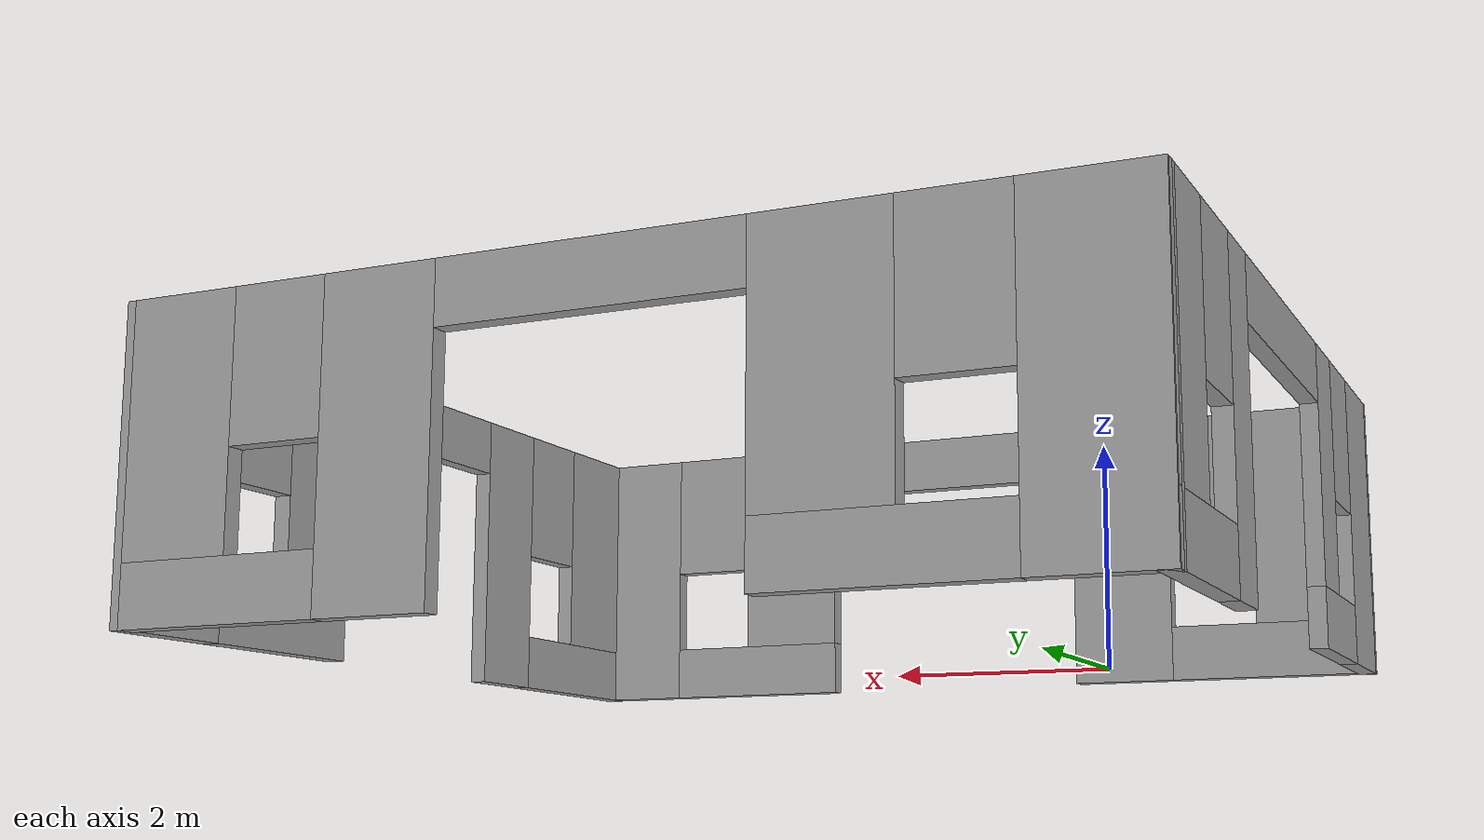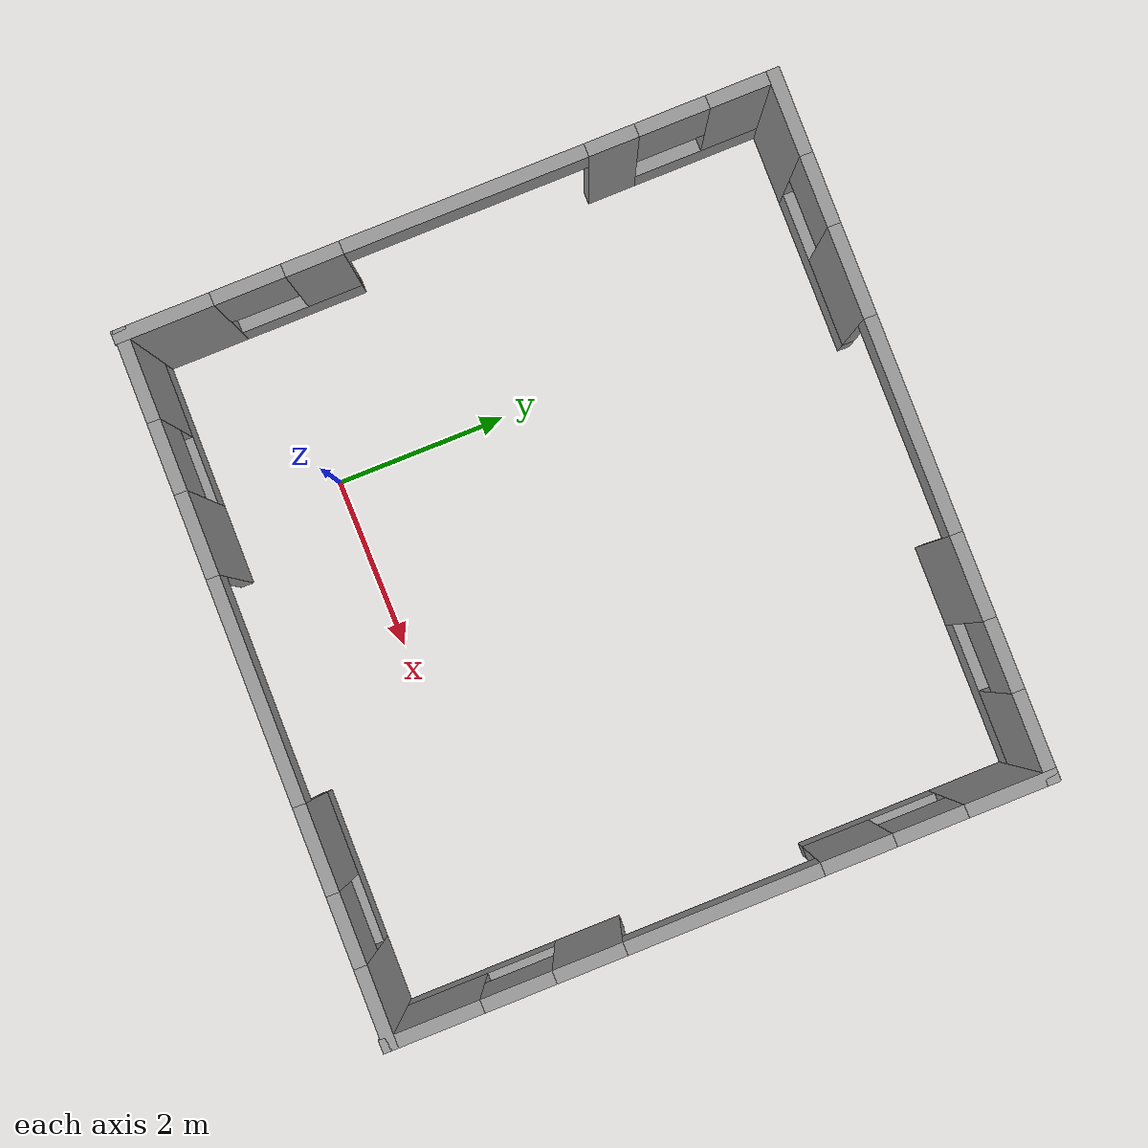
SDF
<?xml version='1.0'?>
<sdf version='1.6'>
  <model name='center'>
    <pose frame=''>1.915 2.23165 0 0 -0 0</pose>
    <link name='Wall_0'>
      <pose frame=''>-3.925 0.043311 0 0 -0 1.5708</pose>
      <visual name='Wall_0_Visual_0'>
        <pose frame=''>-3.19646 0 1.25 0 -0 0</pose>
        <geometry>
          <box>
            <size>1.10708 0.15 2.5</size>
          </box>
        </geometry>
        <material>
          <script>
            <uri>file://media/materials/scripts/gazebo.material</uri>
            <name>Gazebo/Grey</name>
          </script>
          <ambient>1 1 1 1</ambient>
        </material>
        <meta>
          <layer>0</layer>
        </meta>
      </visual>
      <collision name='Wall_0_Collision_0'>
        <geometry>
          <box>
            <size>1.10708 0.15 2.5</size>
          </box>
        </geometry>
        <pose frame=''>-3.19646 0 1.25 0 -0 0</pose>
      </collision>
      <visual name='Wall_0_Visual_1'>
        <pose frame=''>1.84852 0 1.25 0 -0 0</pose>
        <geometry>
          <box>
            <size>0.566695 0.15 2.5</size>
          </box>
        </geometry>
        <material>
          <script>
            <uri>file://media/materials/scripts/gazebo.material</uri>
            <name>Gazebo/Grey</name>
          </script>
          <ambient>1 1 1 1</ambient>
        </material>
        <meta>
          <layer>0</layer>
        </meta>
      </visual>
      <collision name='Wall_0_Collision_1'>
        <geometry>
          <box>
            <size>0.566695 0.15 2.5</size>
          </box>
        </geometry>
        <pose frame=''>1.84852 0 1.25 0 -0 0</pose>
      </collision>
      <visual name='Wall_0_Visual_2'>
        <pose frame=''>-1.91585 0 0.25 0 -0 0</pose>
        <geometry>
          <box>
            <size>1.45415 0.15 0.5</size>
          </box>
        </geometry>
        <material>
          <script>
            <uri>file://media/materials/scripts/gazebo.material</uri>
            <name>Gazebo/Grey</name>
          </script>
          <ambient>1 1 1 1</ambient>
        </material>
        <meta>
          <layer>0</layer>
        </meta>
      </visual>
      <collision name='Wall_0_Collision_2'>
        <geometry>
          <box>
            <size>1.45415 0.15 0.5</size>
          </box>
        </geometry>
        <pose frame=''>-1.91585 0 0.25 0 -0 0</pose>
      </collision>
      <visual name='Wall_0_Visual_3'>
        <pose frame=''>2.94093 0 0.25 0 -0 0</pose>
        <geometry>
          <box>
            <size>1.61813 0.15 0.5</size>
          </box>
        </geometry>
        <material>
          <script>
            <uri>file://media/materials/scripts/gazebo.material</uri>
            <name>Gazebo/Grey</name>
          </script>
          <ambient>1 1 1 1</ambient>
        </material>
        <meta>
          <layer>0</layer>
        </meta>
      </visual>
      <collision name='Wall_0_Collision_3'>
        <geometry>
          <box>
            <size>1.61813 0.15 0.5</size>
          </box>
        </geometry>
        <pose frame=''>2.94093 0 0.25 0 -0 0</pose>
      </collision>
      <visual name='Wall_0_Visual_4'>
        <pose frame=''>-1.51585 0 1.5 0 -0 0</pose>
        <geometry>
          <box>
            <size>0.654145 0.15 2</size>
          </box>
        </geometry>
        <material>
          <script>
            <uri>file://media/materials/scripts/gazebo.material</uri>
            <name>Gazebo/Grey</name>
          </script>
          <ambient>1 1 1 1</ambient>
        </material>
        <meta>
          <layer>0</layer>
        </meta>
      </visual>
      <collision name='Wall_0_Collision_4'>
        <geometry>
          <box>
            <size>0.654145 0.15 2</size>
          </box>
        </geometry>
        <pose frame=''>-1.51585 0 1.5 0 -0 0</pose>
      </collision>
      <visual name='Wall_0_Visual_5'>
        <pose frame=''>-1.51585 0 1.5 0 -0 0</pose>
        <geometry>
          <box>
            <size>0.654145 0.15 2</size>
          </box>
        </geometry>
        <material>
          <script>
            <uri>file://media/materials/scripts/gazebo.material</uri>
            <name>Gazebo/Grey</name>
          </script>
          <ambient>1 1 1 1</ambient>
        </material>
        <meta>
          <layer>0</layer>
        </meta>
      </visual>
      <collision name='Wall_0_Collision_5'>
        <geometry>
          <box>
            <size>0.654145 0.15 2</size>
          </box>
        </geometry>
        <pose frame=''>-1.51585 0 1.5 0 -0 0</pose>
      </collision>
      <visual name='Wall_0_Visual_6'>
        <pose frame=''>3.34093 0 1.5 0 -0 0</pose>
        <geometry>
          <box>
            <size>0.818134 0.15 2</size>
          </box>
        </geometry>
        <material>
          <script>
            <uri>file://media/materials/scripts/gazebo.material</uri>
            <name>Gazebo/Grey</name>
          </script>
          <ambient>1 1 1 1</ambient>
        </material>
        <meta>
          <layer>0</layer>
        </meta>
      </visual>
      <collision name='Wall_0_Collision_6'>
        <geometry>
          <box>
            <size>0.818134 0.15 2</size>
          </box>
        </geometry>
        <pose frame=''>3.34093 0 1.5 0 -0 0</pose>
      </collision>
      <visual name='Wall_0_Visual_7'>
        <pose frame=''>-2.24292 0 1.9 0 -0 0</pose>
        <geometry>
          <box>
            <size>0.8 0.15 1.2</size>
          </box>
        </geometry>
        <material>
          <script>
            <uri>file://media/materials/scripts/gazebo.material</uri>
            <name>Gazebo/Grey</name>
          </script>
          <ambient>1 1 1 1</ambient>
        </material>
        <meta>
          <layer>0</layer>
        </meta>
      </visual>
      <collision name='Wall_0_Collision_7'>
        <geometry>
          <box>
            <size>0.8 0.15 1.2</size>
          </box>
        </geometry>
        <pose frame=''>-2.24292 0 1.9 0 -0 0</pose>
      </collision>
      <visual name='Wall_0_Visual_8'>
        <pose frame=''>2.53187 0 1.9 0 -0 0</pose>
        <geometry>
          <box>
            <size>0.8 0.15 1.2</size>
          </box>
        </geometry>
        <material>
          <script>
            <uri>file://media/materials/scripts/gazebo.material</uri>
            <name>Gazebo/Grey</name>
          </script>
          <ambient>1 1 1 1</ambient>
        </material>
        <meta>
          <layer>0</layer>
        </meta>
      </visual>
      <collision name='Wall_0_Collision_8'>
        <geometry>
          <box>
            <size>0.8 0.15 1.2</size>
          </box>
        </geometry>
        <pose frame=''>2.53187 0 1.9 0 -0 0</pose>
      </collision>
      <visual name='Wall_0_Visual_9'>
        <pose frame=''>0.188198 0 2.25 0 -0 0</pose>
        <geometry>
          <box>
            <size>2.75395 0.15 0.5</size>
          </box>
        </geometry>
        <material>
          <script>
            <uri>file://media/materials/scripts/gazebo.material</uri>
            <name>Gazebo/Grey</name>
          </script>
          <ambient>1 1 1 1</ambient>
        </material>
        <meta>
          <layer>0</layer>
        </meta>
      </visual>
      <collision name='Wall_0_Collision_9'>
        <geometry>
          <box>
            <size>2.75395 0.15 0.5</size>
          </box>
        </geometry>
        <pose frame=''>0.188198 0 2.25 0 -0 0</pose>
      </collision>
      <visual name='Wall_0_Visual_10'>
        <pose frame=''>0.188198 0 2.25 0 -0 0</pose>
        <geometry>
          <box>
            <size>2.75395 0.15 0.5</size>
          </box>
        </geometry>
        <material>
          <script>
            <uri>file://media/materials/scripts/gazebo.material</uri>
            <name>Gazebo/Grey</name>
          </script>
          <ambient>1 1 1 1</ambient>
        </material>
        <meta>
          <layer>0</layer>
        </meta>
      </visual>
      <collision name='Wall_0_Collision_10'>
        <geometry>
          <box>
            <size>2.75395 0.15 0.5</size>
          </box>
        </geometry>
        <pose frame=''>0.188198 0 2.25 0 -0 0</pose>
      </collision>
    </link>
    <link name='Wall_1'>
      <pose frame=''>0 3.69208 0 0 -0 -0.01114</pose>
      <visual name='Wall_1_Visual_0'>
        <pose frame=''>-3.51677 0 1.25 0 -0 0</pose>
        <geometry>
          <box>
            <size>0.966478 0.15 2.5</size>
          </box>
        </geometry>
        <material>
          <script>
            <uri>file://media/materials/scripts/gazebo.material</uri>
            <name>Gazebo/Grey</name>
          </script>
          <ambient>1 1 1 1</ambient>
        </material>
        <meta>
          <layer>0</layer>
        </meta>
      </visual>
      <collision name='Wall_1_Collision_0'>
        <geometry>
          <box>
            <size>0.966478 0.15 2.5</size>
          </box>
        </geometry>
        <pose frame=''>-3.51677 0 1.25 0 -0 0</pose>
      </collision>
      <visual name='Wall_1_Visual_1'>
        <pose frame=''>1.70109 0 1.25 0 -0 0</pose>
        <geometry>
          <box>
            <size>0.951621 0.15 2.5</size>
          </box>
        </geometry>
        <material>
          <script>
            <uri>file://media/materials/scripts/gazebo.material</uri>
            <name>Gazebo/Grey</name>
          </script>
          <ambient>1 1 1 1</ambient>
        </material>
        <meta>
          <layer>0</layer>
        </meta>
      </visual>
      <collision name='Wall_1_Collision_1'>
        <geometry>
          <box>
            <size>0.951621 0.15 2.5</size>
          </box>
        </geometry>
        <pose frame=''>1.70109 0 1.25 0 -0 0</pose>
      </collision>
      <visual name='Wall_1_Visual_2'>
        <pose frame=''>-2.11739 0 0.25 0 -0 0</pose>
        <geometry>
          <box>
            <size>1.8323 0.15 0.5</size>
          </box>
        </geometry>
        <material>
          <script>
            <uri>file://media/materials/scripts/gazebo.material</uri>
            <name>Gazebo/Grey</name>
          </script>
          <ambient>1 1 1 1</ambient>
        </material>
        <meta>
          <layer>0</layer>
        </meta>
      </visual>
      <collision name='Wall_1_Collision_2'>
        <geometry>
          <box>
            <size>1.8323 0.15 0.5</size>
          </box>
        </geometry>
        <pose frame=''>-2.11739 0 0.25 0 -0 0</pose>
      </collision>
      <visual name='Wall_1_Visual_3'>
        <pose frame=''>3.08846 0 0.25 0 -0 0</pose>
        <geometry>
          <box>
            <size>1.8231 0.15 0.5</size>
          </box>
        </geometry>
        <material>
          <script>
            <uri>file://media/materials/scripts/gazebo.material</uri>
            <name>Gazebo/Grey</name>
          </script>
          <ambient>1 1 1 1</ambient>
        </material>
        <meta>
          <layer>0</layer>
        </meta>
      </visual>
      <collision name='Wall_1_Collision_3'>
        <geometry>
          <box>
            <size>1.8231 0.15 0.5</size>
          </box>
        </geometry>
        <pose frame=''>3.08846 0 0.25 0 -0 0</pose>
      </collision>
      <visual name='Wall_1_Visual_4'>
        <pose frame=''>-1.71738 0 1.5 0 -0 0</pose>
        <geometry>
          <box>
            <size>1.03229 0.15 2</size>
          </box>
        </geometry>
        <material>
          <script>
            <uri>file://media/materials/scripts/gazebo.material</uri>
            <name>Gazebo/Grey</name>
          </script>
          <ambient>1 1 1 1</ambient>
        </material>
        <meta>
          <layer>0</layer>
        </meta>
      </visual>
      <collision name='Wall_1_Collision_4'>
        <geometry>
          <box>
            <size>1.03229 0.15 2</size>
          </box>
        </geometry>
        <pose frame=''>-1.71738 0 1.5 0 -0 0</pose>
      </collision>
      <visual name='Wall_1_Visual_5'>
        <pose frame=''>-1.71738 0 1.5 0 -0 0</pose>
        <geometry>
          <box>
            <size>1.03229 0.15 2</size>
          </box>
        </geometry>
        <material>
          <script>
            <uri>file://media/materials/scripts/gazebo.material</uri>
            <name>Gazebo/Grey</name>
          </script>
          <ambient>1 1 1 1</ambient>
        </material>
        <meta>
          <layer>0</layer>
        </meta>
      </visual>
      <collision name='Wall_1_Collision_5'>
        <geometry>
          <box>
            <size>1.03229 0.15 2</size>
          </box>
        </geometry>
        <pose frame=''>-1.71738 0 1.5 0 -0 0</pose>
      </collision>
      <visual name='Wall_1_Visual_6'>
        <pose frame=''>3.48846 0 1.5 0 -0 0</pose>
        <geometry>
          <box>
            <size>1.0231 0.15 2</size>
          </box>
        </geometry>
        <material>
          <script>
            <uri>file://media/materials/scripts/gazebo.material</uri>
            <name>Gazebo/Grey</name>
          </script>
          <ambient>1 1 1 1</ambient>
        </material>
        <meta>
          <layer>0</layer>
        </meta>
      </visual>
      <collision name='Wall_1_Collision_6'>
        <geometry>
          <box>
            <size>1.0231 0.15 2</size>
          </box>
        </geometry>
        <pose frame=''>3.48846 0 1.5 0 -0 0</pose>
      </collision>
      <visual name='Wall_1_Visual_7'>
        <pose frame=''>-2.63353 0 1.9 0 -0 0</pose>
        <geometry>
          <box>
            <size>0.8 0.15 1.2</size>
          </box>
        </geometry>
        <material>
          <script>
            <uri>file://media/materials/scripts/gazebo.material</uri>
            <name>Gazebo/Grey</name>
          </script>
          <ambient>1 1 1 1</ambient>
        </material>
        <meta>
          <layer>0</layer>
        </meta>
      </visual>
      <collision name='Wall_1_Collision_7'>
        <geometry>
          <box>
            <size>0.8 0.15 1.2</size>
          </box>
        </geometry>
        <pose frame=''>-2.63353 0 1.9 0 -0 0</pose>
      </collision>
      <visual name='Wall_1_Visual_8'>
        <pose frame=''>2.5769 0 1.9 0 -0 0</pose>
        <geometry>
          <box>
            <size>0.8 0.15 1.2</size>
          </box>
        </geometry>
        <material>
          <script>
            <uri>file://media/materials/scripts/gazebo.material</uri>
            <name>Gazebo/Grey</name>
          </script>
          <ambient>1 1 1 1</ambient>
        </material>
        <meta>
          <layer>0</layer>
        </meta>
      </visual>
      <collision name='Wall_1_Collision_8'>
        <geometry>
          <box>
            <size>0.8 0.15 1.2</size>
          </box>
        </geometry>
        <pose frame=''>2.5769 0 1.9 0 -0 0</pose>
      </collision>
      <visual name='Wall_1_Visual_9'>
        <pose frame=''>0.012023 0 2.25 0 -0 0</pose>
        <geometry>
          <box>
            <size>2.42652 0.15 0.5</size>
          </box>
        </geometry>
        <material>
          <script>
            <uri>file://media/materials/scripts/gazebo.material</uri>
            <name>Gazebo/Grey</name>
          </script>
          <ambient>1 1 1 1</ambient>
        </material>
        <meta>
          <layer>0</layer>
        </meta>
      </visual>
      <collision name='Wall_1_Collision_9'>
        <geometry>
          <box>
            <size>2.42652 0.15 0.5</size>
          </box>
        </geometry>
        <pose frame=''>0.012023 0 2.25 0 -0 0</pose>
      </collision>
      <visual name='Wall_1_Visual_10'>
        <pose frame=''>0.012023 0 2.25 0 -0 0</pose>
        <geometry>
          <box>
            <size>2.42652 0.15 0.5</size>
          </box>
        </geometry>
        <material>
          <script>
            <uri>file://media/materials/scripts/gazebo.material</uri>
            <name>Gazebo/Grey</name>
          </script>
          <ambient>1 1 1 1</ambient>
        </material>
        <meta>
          <layer>0</layer>
        </meta>
      </visual>
      <collision name='Wall_1_Collision_10'>
        <geometry>
          <box>
            <size>2.42652 0.15 0.5</size>
          </box>
        </geometry>
        <pose frame=''>0.012023 0 2.25 0 -0 0</pose>
      </collision>
    </link>
    <link name='Wall_2'>
      <pose frame=''>3.925 -0.044139 0 0 -0 -1.5708</pose>
      <visual name='Wall_2_Visual_0'>
        <pose frame=''>-3.25348 0 1.25 0 -0 0</pose>
        <geometry>
          <box>
            <size>1.02801 0.15 2.5</size>
          </box>
        </geometry>
        <material>
          <script>
            <uri>file://media/materials/scripts/gazebo.material</uri>
            <name>Gazebo/Grey</name>
          </script>
          <ambient>1 1 1 1</ambient>
        </material>
        <meta>
          <layer>0</layer>
        </meta>
      </visual>
      <collision name='Wall_2_Collision_0'>
        <geometry>
          <box>
            <size>1.02801 0.15 2.5</size>
          </box>
        </geometry>
        <pose frame=''>-3.25348 0 1.25 0 -0 0</pose>
      </collision>
      <visual name='Wall_2_Visual_1'>
        <pose frame=''>1.45026 0 1.25 0 -0 0</pose>
        <geometry>
          <box>
            <size>0.785321 0.15 2.5</size>
          </box>
        </geometry>
        <material>
          <script>
            <uri>file://media/materials/scripts/gazebo.material</uri>
            <name>Gazebo/Grey</name>
          </script>
          <ambient>1 1 1 1</ambient>
        </material>
        <meta>
          <layer>0</layer>
        </meta>
      </visual>
      <collision name='Wall_2_Collision_1'>
        <geometry>
          <box>
            <size>0.785321 0.15 2.5</size>
          </box>
        </geometry>
        <pose frame=''>1.45026 0 1.25 0 -0 0</pose>
      </collision>
      <visual name='Wall_2_Visual_2'>
        <pose frame=''>-1.93807 0 0.25 0 -0 0</pose>
        <geometry>
          <box>
            <size>1.60281 0.15 0.5</size>
          </box>
        </geometry>
        <material>
          <script>
            <uri>file://media/materials/scripts/gazebo.material</uri>
            <name>Gazebo/Grey</name>
          </script>
          <ambient>1 1 1 1</ambient>
        </material>
        <meta>
          <layer>0</layer>
        </meta>
      </visual>
      <collision name='Wall_2_Collision_2'>
        <geometry>
          <box>
            <size>1.60281 0.15 0.5</size>
          </box>
        </geometry>
        <pose frame=''>-1.93807 0 0.25 0 -0 0</pose>
      </collision>
      <visual name='Wall_2_Visual_3'>
        <pose frame=''>2.80521 0 0.25 0 -0 0</pose>
        <geometry>
          <box>
            <size>1.92457 0.15 0.5</size>
          </box>
        </geometry>
        <material>
          <script>
            <uri>file://media/materials/scripts/gazebo.material</uri>
            <name>Gazebo/Grey</name>
          </script>
          <ambient>1 1 1 1</ambient>
        </material>
        <meta>
          <layer>0</layer>
        </meta>
      </visual>
      <collision name='Wall_2_Collision_3'>
        <geometry>
          <box>
            <size>1.92457 0.15 0.5</size>
          </box>
        </geometry>
        <pose frame=''>2.80521 0 0.25 0 -0 0</pose>
      </collision>
      <visual name='Wall_2_Visual_4'>
        <pose frame=''>-1.53807 0 1.5 0 -0 0</pose>
        <geometry>
          <box>
            <size>0.802811 0.15 2</size>
          </box>
        </geometry>
        <material>
          <script>
            <uri>file://media/materials/scripts/gazebo.material</uri>
            <name>Gazebo/Grey</name>
          </script>
          <ambient>1 1 1 1</ambient>
        </material>
        <meta>
          <layer>0</layer>
        </meta>
      </visual>
      <collision name='Wall_2_Collision_4'>
        <geometry>
          <box>
            <size>0.802811 0.15 2</size>
          </box>
        </geometry>
        <pose frame=''>-1.53807 0 1.5 0 -0 0</pose>
      </collision>
      <visual name='Wall_2_Visual_5'>
        <pose frame=''>-1.53807 0 1.5 0 -0 0</pose>
        <geometry>
          <box>
            <size>0.802811 0.15 2</size>
          </box>
        </geometry>
        <material>
          <script>
            <uri>file://media/materials/scripts/gazebo.material</uri>
            <name>Gazebo/Grey</name>
          </script>
          <ambient>1 1 1 1</ambient>
        </material>
        <meta>
          <layer>0</layer>
        </meta>
      </visual>
      <collision name='Wall_2_Collision_5'>
        <geometry>
          <box>
            <size>0.802811 0.15 2</size>
          </box>
        </geometry>
        <pose frame=''>-1.53807 0 1.5 0 -0 0</pose>
      </collision>
      <visual name='Wall_2_Visual_6'>
        <pose frame=''>3.20521 0 1.5 0 -0 0</pose>
        <geometry>
          <box>
            <size>1.12457 0.15 2</size>
          </box>
        </geometry>
        <material>
          <script>
            <uri>file://media/materials/scripts/gazebo.material</uri>
            <name>Gazebo/Grey</name>
          </script>
          <ambient>1 1 1 1</ambient>
        </material>
        <meta>
          <layer>0</layer>
        </meta>
      </visual>
      <collision name='Wall_2_Collision_6'>
        <geometry>
          <box>
            <size>1.12457 0.15 2</size>
          </box>
        </geometry>
        <pose frame=''>3.20521 0 1.5 0 -0 0</pose>
      </collision>
      <visual name='Wall_2_Visual_7'>
        <pose frame=''>-2.33948 0 1.9 0 -0 0</pose>
        <geometry>
          <box>
            <size>0.8 0.15 1.2</size>
          </box>
        </geometry>
        <material>
          <script>
            <uri>file://media/materials/scripts/gazebo.material</uri>
            <name>Gazebo/Grey</name>
          </script>
          <ambient>1 1 1 1</ambient>
        </material>
        <meta>
          <layer>0</layer>
        </meta>
      </visual>
      <collision name='Wall_2_Collision_7'>
        <geometry>
          <box>
            <size>0.8 0.15 1.2</size>
          </box>
        </geometry>
        <pose frame=''>-2.33948 0 1.9 0 -0 0</pose>
      </collision>
      <visual name='Wall_2_Visual_8'>
        <pose frame=''>2.24292 0 1.9 0 -0 0</pose>
        <geometry>
          <box>
            <size>0.8 0.15 1.2</size>
          </box>
        </geometry>
        <material>
          <script>
            <uri>file://media/materials/scripts/gazebo.material</uri>
            <name>Gazebo/Grey</name>
          </script>
          <ambient>1 1 1 1</ambient>
        </material>
        <meta>
          <layer>0</layer>
        </meta>
      </visual>
      <collision name='Wall_2_Collision_8'>
        <geometry>
          <box>
            <size>0.8 0.15 1.2</size>
          </box>
        </geometry>
        <pose frame=''>2.24292 0 1.9 0 -0 0</pose>
      </collision>
      <visual name='Wall_2_Visual_9'>
        <pose frame=''>-0.039532 0 2.25 0 -0 0</pose>
        <geometry>
          <box>
            <size>2.19427 0.15 0.5</size>
          </box>
        </geometry>
        <material>
          <script>
            <uri>file://media/materials/scripts/gazebo.material</uri>
            <name>Gazebo/Grey</name>
          </script>
          <ambient>1 1 1 1</ambient>
        </material>
        <meta>
          <layer>0</layer>
        </meta>
      </visual>
      <collision name='Wall_2_Collision_9'>
        <geometry>
          <box>
            <size>2.19427 0.15 0.5</size>
          </box>
        </geometry>
        <pose frame=''>-0.039532 0 2.25 0 -0 0</pose>
      </collision>
      <visual name='Wall_2_Visual_10'>
        <pose frame=''>-0.039532 0 2.25 0 -0 0</pose>
        <geometry>
          <box>
            <size>2.19427 0.15 0.5</size>
          </box>
        </geometry>
        <material>
          <script>
            <uri>file://media/materials/scripts/gazebo.material</uri>
            <name>Gazebo/Grey</name>
          </script>
          <ambient>1 1 1 1</ambient>
        </material>
        <meta>
          <layer>0</layer>
        </meta>
      </visual>
      <collision name='Wall_2_Collision_10'>
        <geometry>
          <box>
            <size>2.19427 0.15 0.5</size>
          </box>
        </geometry>
        <pose frame=''>-0.039532 0 2.25 0 -0 0</pose>
      </collision>
    </link>
    <link name='Wall_3'>
      <pose frame=''>0 -3.66667 0 0 -0 3.12823</pose>
      <visual name='Wall_3_Visual_0'>
        <pose frame=''>-3.54389 0 1.25 0 -0 0</pose>
        <geometry>
          <box>
            <size>0.912232 0.15 2.5</size>
          </box>
        </geometry>
        <material>
          <script>
            <uri>file://media/materials/scripts/gazebo.material</uri>
            <name>Gazebo/Grey</name>
          </script>
          <ambient>1 1 1 1</ambient>
        </material>
        <meta>
          <layer>0</layer>
        </meta>
      </visual>
      <collision name='Wall_3_Collision_0'>
        <geometry>
          <box>
            <size>0.912232 0.15 2.5</size>
          </box>
        </geometry>
        <pose frame=''>-3.54389 0 1.25 0 -0 0</pose>
      </collision>
      <visual name='Wall_3_Visual_1'>
        <pose frame=''>1.68912 0 1.25 0 -0 0</pose>
        <geometry>
          <box>
            <size>0.942104 0.15 2.5</size>
          </box>
        </geometry>
        <material>
          <script>
            <uri>file://media/materials/scripts/gazebo.material</uri>
            <name>Gazebo/Grey</name>
          </script>
          <ambient>1 1 1 1</ambient>
        </material>
        <meta>
          <layer>0</layer>
        </meta>
      </visual>
      <collision name='Wall_3_Collision_1'>
        <geometry>
          <box>
            <size>0.942104 0.15 2.5</size>
          </box>
        </geometry>
        <pose frame=''>1.68912 0 1.25 0 -0 0</pose>
      </collision>
      <visual name='Wall_3_Visual_2'>
        <pose frame=''>-2.1983 0 0.25 0 -0 0</pose>
        <geometry>
          <box>
            <size>1.77895 0.15 0.5</size>
          </box>
        </geometry>
        <material>
          <script>
            <uri>file://media/materials/scripts/gazebo.material</uri>
            <name>Gazebo/Grey</name>
          </script>
          <ambient>1 1 1 1</ambient>
        </material>
        <meta>
          <layer>0</layer>
        </meta>
      </visual>
      <collision name='Wall_3_Collision_2'>
        <geometry>
          <box>
            <size>1.77895 0.15 0.5</size>
          </box>
        </geometry>
        <pose frame=''>-2.1983 0 0.25 0 -0 0</pose>
      </collision>
      <visual name='Wall_3_Visual_3'>
        <pose frame=''>3.08009 0 0.25 0 -0 0</pose>
        <geometry>
          <box>
            <size>1.83984 0.15 0.5</size>
          </box>
        </geometry>
        <material>
          <script>
            <uri>file://media/materials/scripts/gazebo.material</uri>
            <name>Gazebo/Grey</name>
          </script>
          <ambient>1 1 1 1</ambient>
        </material>
        <meta>
          <layer>0</layer>
        </meta>
      </visual>
      <collision name='Wall_3_Collision_3'>
        <geometry>
          <box>
            <size>1.83984 0.15 0.5</size>
          </box>
        </geometry>
        <pose frame=''>3.08009 0 0.25 0 -0 0</pose>
      </collision>
      <visual name='Wall_3_Visual_4'>
        <pose frame=''>-1.7983 0 1.5 0 -0 0</pose>
        <geometry>
          <box>
            <size>0.978951 0.15 2</size>
          </box>
        </geometry>
        <material>
          <script>
            <uri>file://media/materials/scripts/gazebo.material</uri>
            <name>Gazebo/Grey</name>
          </script>
          <ambient>1 1 1 1</ambient>
        </material>
        <meta>
          <layer>0</layer>
        </meta>
      </visual>
      <collision name='Wall_3_Collision_4'>
        <geometry>
          <box>
            <size>0.978951 0.15 2</size>
          </box>
        </geometry>
        <pose frame=''>-1.7983 0 1.5 0 -0 0</pose>
      </collision>
      <visual name='Wall_3_Visual_5'>
        <pose frame=''>-1.7983 0 1.5 0 -0 0</pose>
        <geometry>
          <box>
            <size>0.978951 0.15 2</size>
          </box>
        </geometry>
        <material>
          <script>
            <uri>file://media/materials/scripts/gazebo.material</uri>
            <name>Gazebo/Grey</name>
          </script>
          <ambient>1 1 1 1</ambient>
        </material>
        <meta>
          <layer>0</layer>
        </meta>
      </visual>
      <collision name='Wall_3_Collision_5'>
        <geometry>
          <box>
            <size>0.978951 0.15 2</size>
          </box>
        </geometry>
        <pose frame=''>-1.7983 0 1.5 0 -0 0</pose>
      </collision>
      <visual name='Wall_3_Visual_6'>
        <pose frame=''>3.48009 0 1.5 0 -0 0</pose>
        <geometry>
          <box>
            <size>1.03984 0.15 2</size>
          </box>
        </geometry>
        <material>
          <script>
            <uri>file://media/materials/scripts/gazebo.material</uri>
            <name>Gazebo/Grey</name>
          </script>
          <ambient>1 1 1 1</ambient>
        </material>
        <meta>
          <layer>0</layer>
        </meta>
      </visual>
      <collision name='Wall_3_Collision_6'>
        <geometry>
          <box>
            <size>1.03984 0.15 2</size>
          </box>
        </geometry>
        <pose frame=''>3.48009 0 1.5 0 -0 0</pose>
      </collision>
      <visual name='Wall_3_Visual_7'>
        <pose frame=''>-2.68778 0 1.9 0 -0 0</pose>
        <geometry>
          <box>
            <size>0.8 0.15 1.2</size>
          </box>
        </geometry>
        <material>
          <script>
            <uri>file://media/materials/scripts/gazebo.material</uri>
            <name>Gazebo/Grey</name>
          </script>
          <ambient>1 1 1 1</ambient>
        </material>
        <meta>
          <layer>0</layer>
        </meta>
      </visual>
      <collision name='Wall_3_Collision_7'>
        <geometry>
          <box>
            <size>0.8 0.15 1.2</size>
          </box>
        </geometry>
        <pose frame=''>-2.68778 0 1.9 0 -0 0</pose>
      </collision>
      <visual name='Wall_3_Visual_8'>
        <pose frame=''>2.56018 0 1.9 0 -0 0</pose>
        <geometry>
          <box>
            <size>0.8 0.15 1.2</size>
          </box>
        </geometry>
        <material>
          <script>
            <uri>file://media/materials/scripts/gazebo.material</uri>
            <name>Gazebo/Grey</name>
          </script>
          <ambient>1 1 1 1</ambient>
        </material>
        <meta>
          <layer>0</layer>
        </meta>
      </visual>
      <collision name='Wall_3_Collision_8'>
        <geometry>
          <box>
            <size>0.8 0.15 1.2</size>
          </box>
        </geometry>
        <pose frame=''>2.56018 0 1.9 0 -0 0</pose>
      </collision>
      <visual name='Wall_3_Visual_9'>
        <pose frame=''>-0.045378 0 2.25 0 -0 0</pose>
        <geometry>
          <box>
            <size>2.5269 0.15 0.5</size>
          </box>
        </geometry>
        <material>
          <script>
            <uri>file://media/materials/scripts/gazebo.material</uri>
            <name>Gazebo/Grey</name>
          </script>
          <ambient>1 1 1 1</ambient>
        </material>
        <meta>
          <layer>0</layer>
        </meta>
      </visual>
      <collision name='Wall_3_Collision_9'>
        <geometry>
          <box>
            <size>2.5269 0.15 0.5</size>
          </box>
        </geometry>
        <pose frame=''>-0.045378 0 2.25 0 -0 0</pose>
      </collision>
      <visual name='Wall_3_Visual_10'>
        <pose frame=''>-0.045378 0 2.25 0 -0 0</pose>
        <geometry>
          <box>
            <size>2.5269 0.15 0.5</size>
          </box>
        </geometry>
        <material>
          <script>
            <uri>file://media/materials/scripts/gazebo.material</uri>
            <name>Gazebo/Grey</name>
          </script>
          <ambient>1 1 1 1</ambient>
        </material>
        <meta>
          <layer>0</layer>
        </meta>
      </visual>
      <collision name='Wall_3_Collision_10'>
        <geometry>
          <box>
            <size>2.5269 0.15 0.5</size>
          </box>
        </geometry>
        <pose frame=''>-0.045378 0 2.25 0 -0 0</pose>
      </collision>
    </link>
    <static>1</static>
  </model>
</sdf>
